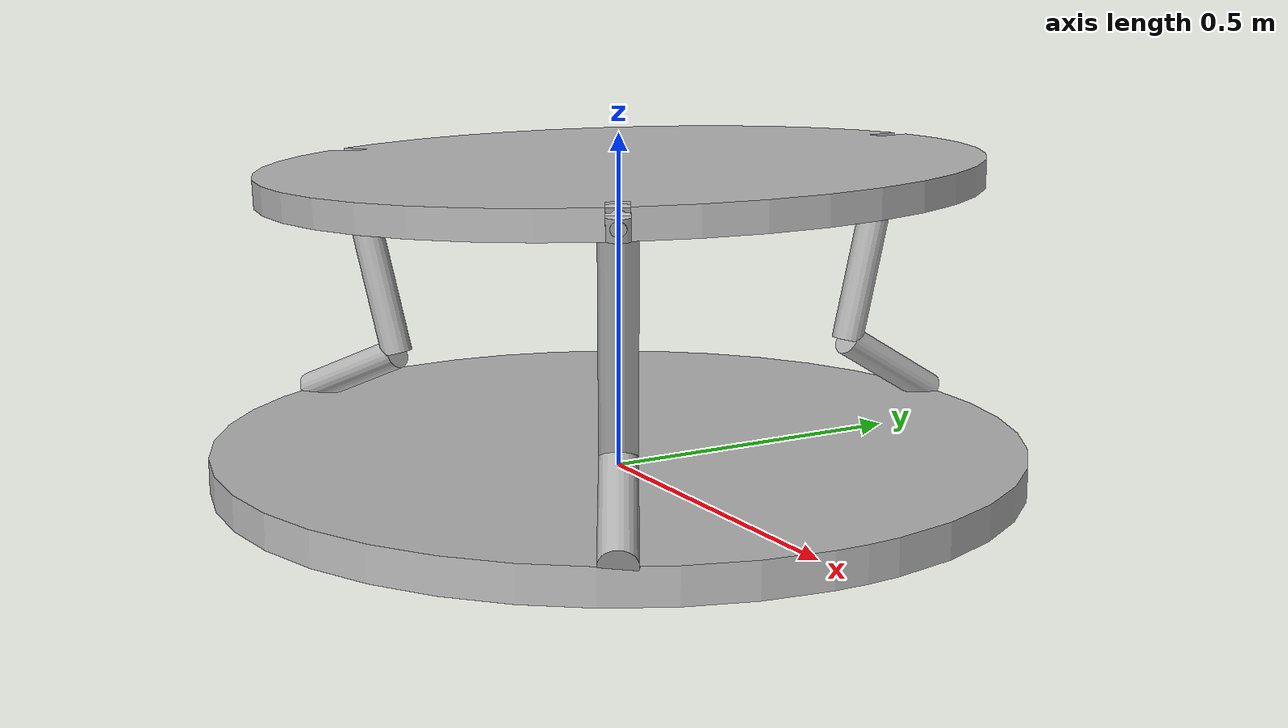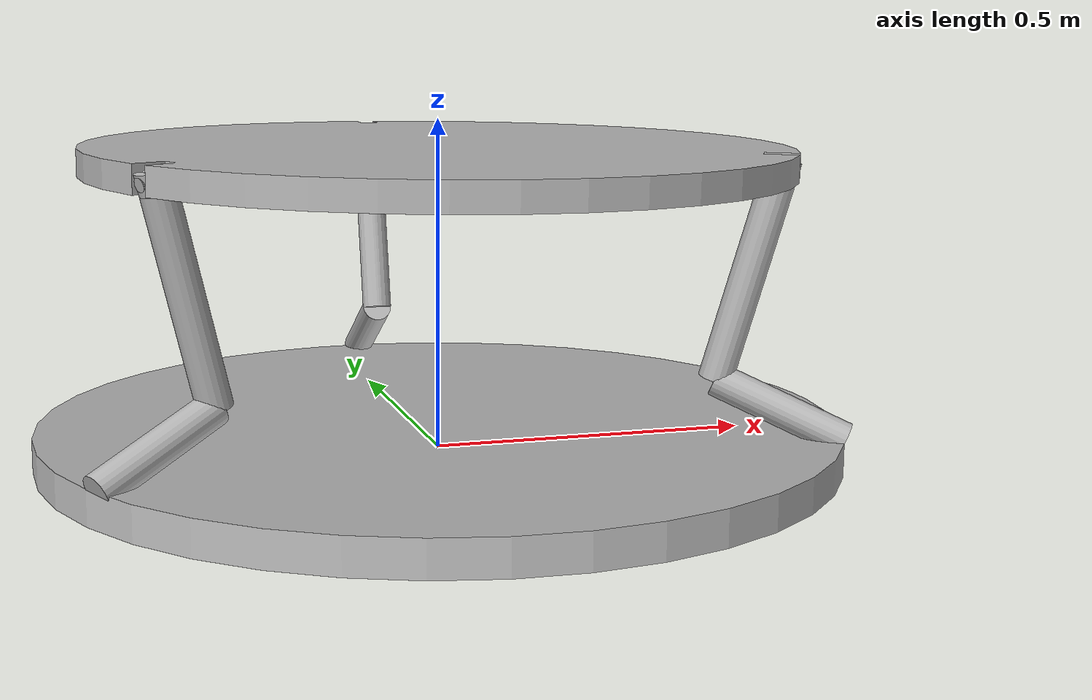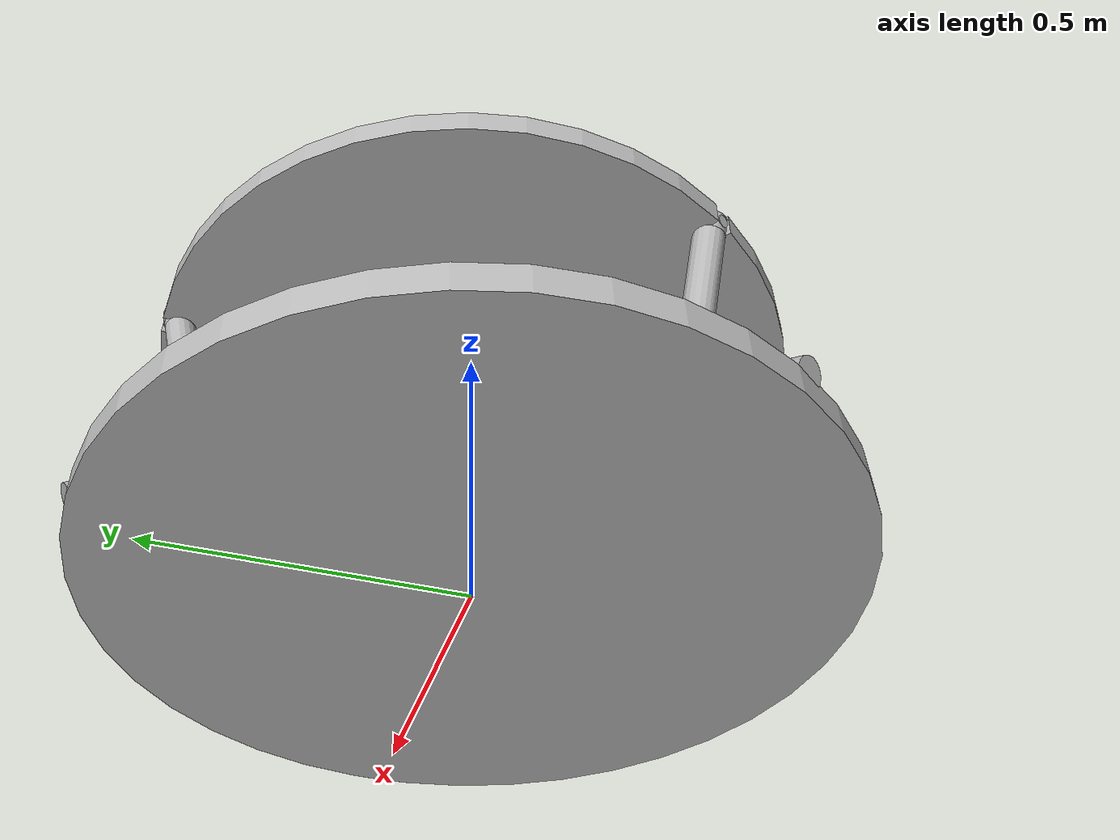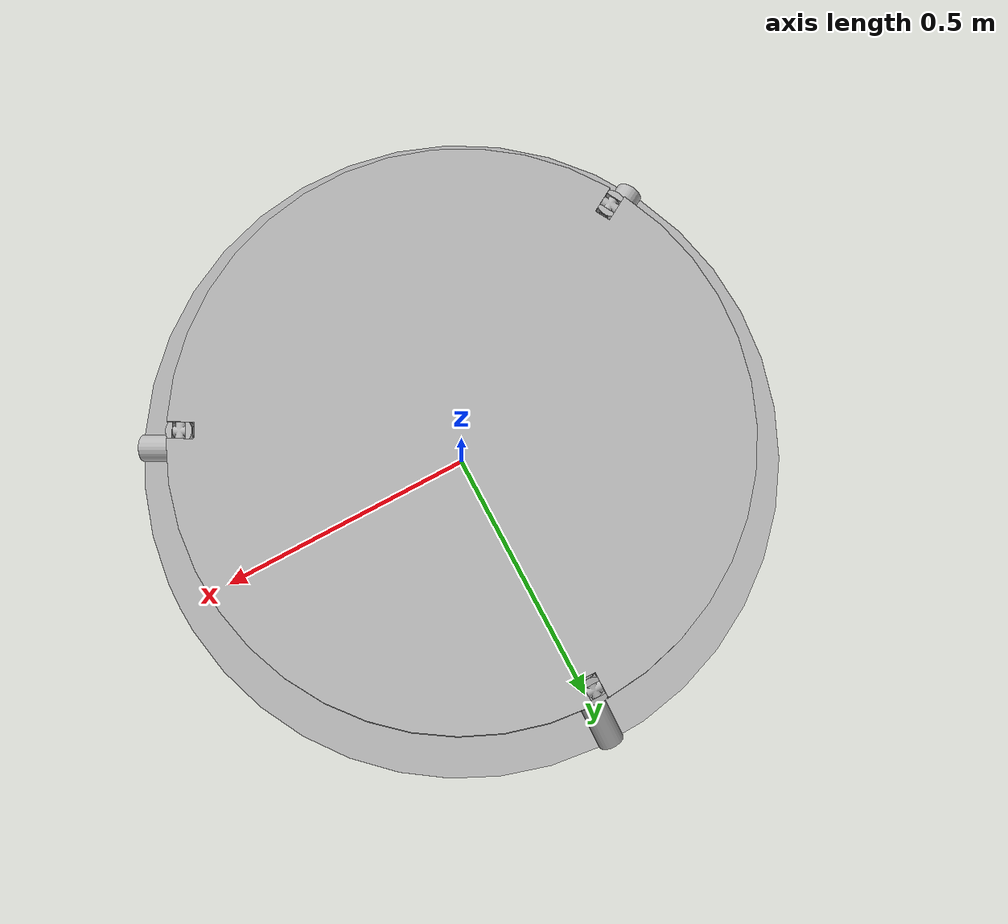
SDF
<?xml version='1.0'?>
<sdf version='1.7'>
  <model name='model3'>
    <link name='base_plat'>
      <pose>0 0 0 0 -0 0</pose>
      <inertial>
        <pose>0 -0 0.025 0 -0 0</pose>
        <mass>56.549</mass>
        <inertia>
          <ixx>5.1012</ixx>
          <ixy>2.1039e-29</ixy>
          <ixz>-2.7658e-29</ixz>
          <iyy>5.1012</iyy>
          <iyz>-6.2183e-16</iyz>
          <izz>10.179</izz>
        </inertia>
      </inertial>
      <self_collide>0</self_collide>
      <enable_wind>0</enable_wind>
      <kinematic>0</kinematic>
      <visual name='base_plat_visual'>
        <pose>0 0 0 0 -0 0</pose>
        <geometry>
          <mesh>
            <scale>1 1 1</scale>
            <uri>model://model3/meshes/base_plat.STL</uri>

          </mesh>
        </geometry>
        <material>
          <shader type='pixel'/>
        </material>
        <transparency>0</transparency>
        <cast_shadows>1</cast_shadows>
      </visual>
      <collision name='base_plat_collision'>
        <laser_retro>0</laser_retro>
        <max_contacts>10</max_contacts>
        <pose>0 0 0 0 -0 0</pose>
        <geometry>
          <mesh>
            <uri>model://model3/meshes/base_plat.STL</uri>
            <scale>1 1 1</scale>
          </mesh>
        </geometry>
        <surface>
          <friction>
            <ode>
              <mu>1</mu>
              <mu2>1</mu2>
              <fdir1>0 0 0</fdir1>
              <slip1>0</slip1>
              <slip2>0</slip2>
            </ode>
            <torsional>
              <coefficient>1</coefficient>
              <patch_radius>0</patch_radius>
              <surface_radius>0</surface_radius>
              <use_patch_radius>1</use_patch_radius>
              <ode>
                <slip>0</slip>
              </ode>
            </torsional>
          </friction>
          <bounce>
            <restitution_coefficient>0</restitution_coefficient>
            <threshold>1e+06</threshold>
          </bounce>
          <contact>
            <collide_without_contact>0</collide_without_contact>
            <collide_without_contact_bitmask>1</collide_without_contact_bitmask>
            <collide_bitmask>1</collide_bitmask>
            <ode>
              <soft_cfm>0</soft_cfm>
              <soft_erp>0.2</soft_erp>
              <kp>1e+13</kp>
              <kd>1</kd>
              <max_vel>0.01</max_vel>
              <min_depth>0</min_depth>
            </ode>
            <bullet>
              <split_impulse>1</split_impulse>
              <split_impulse_penetration_threshold>-0.01</split_impulse_penetration_threshold>
              <soft_cfm>0</soft_cfm>
              <soft_erp>0.2</soft_erp>
              <kp>1e+13</kp>
              <kd>1</kd>
            </bullet>
          </contact>
        </surface>
      </collision>
    </link>
    <link name='Rev1'>
      <pose>-0 0.495604 0.442474 0.2306 1e-06 3.14159</pose>
      <inertial>
        <pose>0 1e-06 0.010644 0 -0 0</pose>
        <mass>0.021479</mass>
        <inertia>
          <ixx>7.062e-06</ixx>
          <ixy>-1.1835e-11</ixy>
          <ixz>-4.9722e-11</ixz>
          <iyy>5.3239e-06</iyy>
          <iyz>-4.2684e-11</iyz>
          <izz>8.3294e-06</izz>
        </inertia>
      </inertial>
      <self_collide>0</self_collide>
      <enable_wind>0</enable_wind>
      <kinematic>0</kinematic>
      <visual name='Rev1_visual'>
        <pose>0 0 0 0 -0 0</pose>
        <geometry>
          <mesh>
            <scale>1 1 1</scale>
            <uri>model://model3/meshes/Rev1.STL</uri>
          </mesh>
        </geometry>
        <material>
          <shader type='pixel'/>
        </material>
        <transparency>0</transparency>
        <cast_shadows>1</cast_shadows>
      </visual>
      <collision name='Rev1_collision'>
        <laser_retro>0</laser_retro>
        <max_contacts>10</max_contacts>
        <pose>0 0 0 0 -0 0</pose>
        <geometry>
          <mesh>
            <uri>model://model3/meshes/Rev1.STL</uri>
            <scale>1 1 1</scale>
          </mesh>
        </geometry>
        <surface>
          <friction>
            <ode>
              <mu>1</mu>
              <mu2>1</mu2>
              <fdir1>0 0 0</fdir1>
              <slip1>0</slip1>
              <slip2>0</slip2>
            </ode>
            <torsional>
              <coefficient>1</coefficient>
              <patch_radius>0</patch_radius>
              <surface_radius>0</surface_radius>
              <use_patch_radius>1</use_patch_radius>
              <ode>
                <slip>0</slip>
              </ode>
            </torsional>
          </friction>
          <bounce>
            <restitution_coefficient>0</restitution_coefficient>
            <threshold>1e+06</threshold>
          </bounce>
          <contact>
            <collide_without_contact>0</collide_without_contact>
            <collide_without_contact_bitmask>1</collide_without_contact_bitmask>
            <collide_bitmask>1</collide_bitmask>
            <ode>
              <soft_cfm>0</soft_cfm>
              <soft_erp>0.2</soft_erp>
              <kp>1e+13</kp>
              <kd>1</kd>
              <max_vel>0.01</max_vel>
              <min_depth>0</min_depth>
            </ode>
            <bullet>
              <split_impulse>1</split_impulse>
              <split_impulse_penetration_threshold>-0.01</split_impulse_penetration_threshold>
              <soft_cfm>0</soft_cfm>
              <soft_erp>0.2</soft_erp>
              <kp>1e+13</kp>
              <kd>1</kd>
            </bullet>
          </contact>
        </surface>
      </collision>
    </link>
    <link name='Rev2'>
      <pose>-0.429022 -0.247693 0.418076 -0.267293 -0.001919 2.08739</pose>
      <inertial>
        <pose>-0 -1e-06 0.010644 0 -0 0</pose>
        <mass>0.021479</mass>
        <inertia>
          <ixx>7.062e-06</ixx>
          <ixy>-1.1845e-11</ixy>
          <ixz>4.9658e-11</ixz>
          <iyy>5.3239e-06</iyy>
          <iyz>4.2623e-11</iyz>
          <izz>8.3294e-06</izz>
        </inertia>
      </inertial>
      <self_collide>0</self_collide>
      <enable_wind>0</enable_wind>
      <kinematic>0</kinematic>
      <visual name='Rev2_visual'>
        <pose>0 0 0 0 -0 0</pose>
        <geometry>
          <mesh>
            <scale>1 1 1</scale>
            <uri>model://model3/meshes/Rev2.STL</uri>
          </mesh>
        </geometry>
        <material>
          <shader type='pixel'/>
        </material>
        <transparency>0</transparency>
        <cast_shadows>1</cast_shadows>
      </visual>
      <collision name='Rev2_collision'>
        <laser_retro>0</laser_retro>
        <max_contacts>10</max_contacts>
        <pose>0 0 0 0 -0 0</pose>
        <geometry>
          <mesh>
            <uri>model://model3/meshes/Rev2.STL</uri>
            <scale>1 1 1</scale>
          </mesh>
        </geometry>
        <surface>
          <friction>
            <ode>
              <mu>1</mu>
              <mu2>1</mu2>
              <fdir1>0 0 0</fdir1>
              <slip1>0</slip1>
              <slip2>0</slip2>
            </ode>
            <torsional>
              <coefficient>1</coefficient>
              <patch_radius>0</patch_radius>
              <surface_radius>0</surface_radius>
              <use_patch_radius>1</use_patch_radius>
              <ode>
                <slip>0</slip>
              </ode>
            </torsional>
          </friction>
          <bounce>
            <restitution_coefficient>0</restitution_coefficient>
            <threshold>1e+06</threshold>
          </bounce>
          <contact>
            <collide_without_contact>0</collide_without_contact>
            <collide_without_contact_bitmask>1</collide_without_contact_bitmask>
            <collide_bitmask>1</collide_bitmask>
            <ode>
              <soft_cfm>0</soft_cfm>
              <soft_erp>0.2</soft_erp>
              <kp>1e+13</kp>
              <kd>1</kd>
              <max_vel>0.01</max_vel>
              <min_depth>0</min_depth>
            </ode>
            <bullet>
              <split_impulse>1</split_impulse>
              <split_impulse_penetration_threshold>-0.01</split_impulse_penetration_threshold>
              <soft_cfm>0</soft_cfm>
              <soft_erp>0.2</soft_erp>
              <kp>1e+13</kp>
              <kd>1</kd>
            </bullet>
          </contact>
        </surface>
      </collision>
    </link>
    <link name='Rev3'>
      <pose>0.429022 -0.247693 0.418076 -0.267293 0.001919 -2.08739</pose>
      <inertial>
        <pose>-0 -0 0.010644 0 -0 0</pose>
        <mass>0.02148</mass>
        <inertia>
          <ixx>7.0623e-06</ixx>
          <ixy>-2.3475e-11</ixy>
          <ixz>5.9821e-13</ixz>
          <iyy>5.3239e-06</iyy>
          <iyz>-7.7648e-13</iyz>
          <izz>8.3298e-06</izz>
        </inertia>
      </inertial>
      <self_collide>0</self_collide>
      <enable_wind>0</enable_wind>
      <kinematic>0</kinematic>
      <visual name='Rev3_visual'>
        <pose>0 0 0 0 -0 0</pose>
        <geometry>
          <mesh>
            <scale>1 1 1</scale>
            <uri>model://model3/meshes/Rev3.STL</uri>
          </mesh>
        </geometry>
        <material>
          <shader type='pixel'/>
        </material>
        <transparency>0</transparency>
        <cast_shadows>1</cast_shadows>
      </visual>
      <collision name='Rev3_collision'>
        <laser_retro>0</laser_retro>
        <max_contacts>10</max_contacts>
        <pose>0 0 0 0 -0 0</pose>
        <geometry>
          <mesh>
            <uri>model://model3/meshes/Rev3.STL</uri>
            <scale>1 1 1</scale>
          </mesh>
        </geometry>
        <surface>
          <friction>
            <ode>
              <mu>1</mu>
              <mu2>1</mu2>
              <fdir1>0 0 0</fdir1>
              <slip1>0</slip1>
              <slip2>0</slip2>
            </ode>
            <torsional>
              <coefficient>1</coefficient>
              <patch_radius>0</patch_radius>
              <surface_radius>0</surface_radius>
              <use_patch_radius>1</use_patch_radius>
              <ode>
                <slip>0</slip>
              </ode>
            </torsional>
          </friction>
          <bounce>
            <restitution_coefficient>0</restitution_coefficient>
            <threshold>1e+06</threshold>
          </bounce>
          <contact>
            <collide_without_contact>0</collide_without_contact>
            <collide_without_contact_bitmask>1</collide_without_contact_bitmask>
            <collide_bitmask>1</collide_bitmask>
            <ode>
              <soft_cfm>0</soft_cfm>
              <soft_erp>0.2</soft_erp>
              <kp>1e+13</kp>
              <kd>1</kd>
              <max_vel>0.01</max_vel>
              <min_depth>0</min_depth>
            </ode>
            <bullet>
              <split_impulse>1</split_impulse>
              <split_impulse_penetration_threshold>-0.01</split_impulse_penetration_threshold>
              <soft_cfm>0</soft_cfm>
              <soft_erp>0.2</soft_erp>
              <kp>1e+13</kp>
              <kd>1</kd>
            </bullet>
          </contact>
        </surface>
      </collision>
    </link>
    <link name='Top1'>
      <pose>-0 0.499604 0.459511 0.03273 -1e-06 -5e-06</pose>
      <inertial>
        <pose>0 -0.5 0 0 -0 0</pose>
        <mass>34.426</mass>
        <inertia>
          <ixx>2.365</ixx>
          <ixy>-2.3803e-16</ixy>
          <ixz>-5.6997e-17</ixz>
          <iyy>2.365</iyy>
          <iyz>-4.1633e-17</iyz>
          <izz>4.7208</izz>
        </inertia>
      </inertial>
      <self_collide>0</self_collide>
      <enable_wind>0</enable_wind>
      <kinematic>0</kinematic>
      <visual name='Top1_visual'>
        <pose>0 0 0 0 -0 0</pose>
        <geometry>
          <mesh>
            <scale>1 1 1</scale>
            <uri>model://model3/meshes/Top1.STL</uri>
          </mesh>
        </geometry>
        <material>
          <shader type='pixel'/>
        </material>
        <transparency>0</transparency>
        <cast_shadows>1</cast_shadows>
      </visual>
      <collision name='Top1_collision'>
        <laser_retro>0</laser_retro>
        <max_contacts>10</max_contacts>
        <pose>0 0 0 0 -0 0</pose>
        <geometry>
          <mesh>
            <uri>model://model3/meshes/Top1.STL</uri>
            <scale>1 1 1</scale>
          </mesh>
        </geometry>
        <surface>
          <friction>
            <ode>
              <mu>1</mu>
              <mu2>1</mu2>
              <fdir1>0 0 0</fdir1>
              <slip1>0</slip1>
              <slip2>0</slip2>
            </ode>
            <torsional>
              <coefficient>1</coefficient>
              <patch_radius>0</patch_radius>
              <surface_radius>0</surface_radius>
              <use_patch_radius>1</use_patch_radius>
              <ode>
                <slip>0</slip>
              </ode>
            </torsional>
          </friction>
          <bounce>
            <restitution_coefficient>0</restitution_coefficient>
            <threshold>1e+06</threshold>
          </bounce>
          <contact>
            <collide_without_contact>0</collide_without_contact>
            <collide_without_contact_bitmask>1</collide_without_contact_bitmask>
            <collide_bitmask>1</collide_bitmask>
            <ode>
              <soft_cfm>0</soft_cfm>
              <soft_erp>0.2</soft_erp>
              <kp>1e+13</kp>
              <kd>1</kd>
              <max_vel>0.01</max_vel>
              <min_depth>0</min_depth>
            </ode>
            <bullet>
              <split_impulse>1</split_impulse>
              <split_impulse_penetration_threshold>-0.01</split_impulse_penetration_threshold>
              <soft_cfm>0</soft_cfm>
              <soft_erp>0.2</soft_erp>
              <kp>1e+13</kp>
              <kd>1</kd>
            </bullet>
          </contact>
        </surface>
      </collision>
    </link>
    <link name='arm1'>
      <pose>-0 0.6 0.05 1.0448 -0 0</pose>
      <inertial>
        <pose>0 -0 0.1 0 -0 0</pose>
        <mass>0.3927</mass>
        <inertia>
          <ixx>0.0013704</ixx>
          <ixy>-1.4144e-33</ixy>
          <ixz>-2.9803e-17</ixz>
          <iyy>0.0013704</iyy>
          <iyz>-1.1181e-19</iyz>
          <izz>0.00012272</izz>
        </inertia>
      </inertial>
      <self_collide>0</self_collide>
      <enable_wind>0</enable_wind>
      <kinematic>0</kinematic>
      <visual name='arm1_visual'>
        <pose>0 0 0 0 -0 0</pose>
        <geometry>
          <mesh>
            <scale>1 1 1</scale>
            <uri>model://model3/meshes/arm1.STL</uri>
          </mesh>
        </geometry>
        <material>
          <shader type='pixel'/>
        </material>
        <transparency>0</transparency>
        <cast_shadows>1</cast_shadows>
      </visual>
      <collision name='arm1_collision'>
        <laser_retro>0</laser_retro>
        <max_contacts>10</max_contacts>
        <pose>0 0 0 0 -0 0</pose>
        <geometry>
          <mesh>
            <uri>model://model3/meshes/arm1.STL</uri>
            <scale>1 1 1</scale>
          </mesh>
        </geometry>
        <surface>
          <friction>
            <ode>
              <mu>1</mu>
              <mu2>1</mu2>
              <fdir1>0 0 0</fdir1>
              <slip1>0</slip1>
              <slip2>0</slip2>
            </ode>
            <torsional>
              <coefficient>1</coefficient>
              <patch_radius>0</patch_radius>
              <surface_radius>0</surface_radius>
              <use_patch_radius>1</use_patch_radius>
              <ode>
                <slip>0</slip>
              </ode>
            </torsional>
          </friction>
          <bounce>
            <restitution_coefficient>0</restitution_coefficient>
            <threshold>1e+06</threshold>
          </bounce>
          <contact>
            <collide_without_contact>0</collide_without_contact>
            <collide_without_contact_bitmask>1</collide_without_contact_bitmask>
            <collide_bitmask>1</collide_bitmask>
            <ode>
              <soft_cfm>0</soft_cfm>
              <soft_erp>0.2</soft_erp>
              <kp>1e+13</kp>
              <kd>1</kd>
              <max_vel>0.01</max_vel>
              <min_depth>0</min_depth>
            </ode>
            <bullet>
              <split_impulse>1</split_impulse>
              <split_impulse_penetration_threshold>-0.01</split_impulse_penetration_threshold>
              <soft_cfm>0</soft_cfm>
              <soft_erp>0.2</soft_erp>
              <kp>1e+13</kp>
              <kd>1</kd>
            </bullet>
          </contact>
        </surface>
      </collision>
    </link>
    <link name='arm2'>
      <pose>-0.51962 -0.3 0.05 1.1662 -0 2.0944</pose>
      <inertial>
        <pose>0 0 0.1 0 -0 0</pose>
        <mass>0.3927</mass>
        <inertia>
          <ixx>0.0013704</ixx>
          <ixy>1.4821e-19</ixy>
          <ixz>-3.2718e-17</ixz>
          <iyy>0.0013704</iyy>
          <iyz>-8.1315e-20</iyz>
          <izz>0.00012272</izz>
        </inertia>
      </inertial>
      <self_collide>0</self_collide>
      <enable_wind>0</enable_wind>
      <kinematic>0</kinematic>
      <visual name='arm2_visual'>
        <pose>0 0 0 0 -0 0</pose>
        <geometry>
          <mesh>
            <scale>1 1 1</scale>
            <uri>model://model3/meshes/arm2.STL</uri>
          </mesh>
        </geometry>
        <material>
          <shader type='pixel'/>
        </material>
        <transparency>0</transparency>
        <cast_shadows>1</cast_shadows>
      </visual>
      <collision name='arm2_collision'>
        <laser_retro>0</laser_retro>
        <max_contacts>10</max_contacts>
        <pose>0 0 0 0 -0 0</pose>
        <geometry>
          <mesh>
            <uri>model://model3/meshes/arm2.STL</uri>
            <scale>1 1 1</scale>
          </mesh>
        </geometry>
        <surface>
          <friction>
            <ode>
              <mu>1</mu>
              <mu2>1</mu2>
              <fdir1>0 0 0</fdir1>
              <slip1>0</slip1>
              <slip2>0</slip2>
            </ode>
            <torsional>
              <coefficient>1</coefficient>
              <patch_radius>0</patch_radius>
              <surface_radius>0</surface_radius>
              <use_patch_radius>1</use_patch_radius>
              <ode>
                <slip>0</slip>
              </ode>
            </torsional>
          </friction>
          <bounce>
            <restitution_coefficient>0</restitution_coefficient>
            <threshold>1e+06</threshold>
          </bounce>
          <contact>
            <collide_without_contact>0</collide_without_contact>
            <collide_without_contact_bitmask>1</collide_without_contact_bitmask>
            <collide_bitmask>1</collide_bitmask>
            <ode>
              <soft_cfm>0</soft_cfm>
              <soft_erp>0.2</soft_erp>
              <kp>1e+13</kp>
              <kd>1</kd>
              <max_vel>0.01</max_vel>
              <min_depth>0</min_depth>
            </ode>
            <bullet>
              <split_impulse>1</split_impulse>
              <split_impulse_penetration_threshold>-0.01</split_impulse_penetration_threshold>
              <soft_cfm>0</soft_cfm>
              <soft_erp>0.2</soft_erp>
              <kp>1e+13</kp>
              <kd>1</kd>
            </bullet>
          </contact>
        </surface>
      </collision>
    </link>
    <link name='arm3'>
      <pose>0.51962 -0.3 0.05 1.1662 0 -2.0944</pose>
      <inertial>
        <pose>0 -0 0.1 0 -0 0</pose>
        <mass>0.3927</mass>
        <inertia>
          <ixx>0.0013704</ixx>
          <ixy>1.9376e-20</ixy>
          <ixz>-3.3037e-17</ixz>
          <iyy>0.0013704</iyy>
          <iyz>-1.0164e-20</iyz>
          <izz>0.00012272</izz>
        </inertia>
      </inertial>
      <self_collide>0</self_collide>
      <enable_wind>0</enable_wind>
      <kinematic>0</kinematic>
      <visual name='arm3_visual'>
        <pose>0 0 0 0 -0 0</pose>
        <geometry>
          <mesh>
            <scale>1 1 1</scale>
            <uri>model://model3/meshes/arm3.STL</uri>
          </mesh>
        </geometry>
        <material>
          <shader type='pixel'/>
        </material>
        <transparency>0</transparency>
        <cast_shadows>1</cast_shadows>
      </visual>
      <collision name='arm3_collision'>
        <laser_retro>0</laser_retro>
        <max_contacts>10</max_contacts>
        <pose>0 0 0 0 -0 0</pose>
        <geometry>
          <mesh>
            <uri>model://model3/meshes/arm3.STL</uri>
            <scale>1 1 1</scale>
          </mesh>
        </geometry>
        <surface>
          <friction>
            <ode>
              <mu>1</mu>
              <mu2>1</mu2>
              <fdir1>0 0 0</fdir1>
              <slip1>0</slip1>
              <slip2>0</slip2>
            </ode>
            <torsional>
              <coefficient>1</coefficient>
              <patch_radius>0</patch_radius>
              <surface_radius>0</surface_radius>
              <use_patch_radius>1</use_patch_radius>
              <ode>
                <slip>0</slip>
              </ode>
            </torsional>
          </friction>
          <bounce>
            <restitution_coefficient>0</restitution_coefficient>
            <threshold>1e+06</threshold>
          </bounce>
          <contact>
            <collide_without_contact>0</collide_without_contact>
            <collide_without_contact_bitmask>1</collide_without_contact_bitmask>
            <collide_bitmask>1</collide_bitmask>
            <ode>
              <soft_cfm>0</soft_cfm>
              <soft_erp>0.2</soft_erp>
              <kp>1e+13</kp>
              <kd>1</kd>
              <max_vel>0.01</max_vel>
              <min_depth>0</min_depth>
            </ode>
            <bullet>
              <split_impulse>1</split_impulse>
              <split_impulse_penetration_threshold>-0.01</split_impulse_penetration_threshold>
              <soft_cfm>0</soft_cfm>
              <soft_erp>0.2</soft_erp>
              <kp>1e+13</kp>
              <kd>1</kd>
            </bullet>
          </contact>
        </surface>
      </collision>
    </link>
    <link name='forearm1'>
      <pose>0 0.427035 0.150415 -0.2306 -0 -0</pose>
      <inertial>
        <pose>-0 -0 0.15 0 -0 0</pose>
        <mass>0.58905</mass>
        <inertia>
          <ixx>0.0045099</ixx>
          <ixy>0</ixy>
          <ixz>1.0833e-34</ixz>
          <iyy>0.0045099</iyy>
          <iyz>4.9128e-19</iyz>
          <izz>0.00018408</izz>
        </inertia>
      </inertial>
      <self_collide>0</self_collide>
      <enable_wind>0</enable_wind>
      <kinematic>0</kinematic>
      <visual name='forearm1_visual'>
        <pose>0 0 0 0 -0 0</pose>
        <geometry>
          <mesh>
            <scale>1 1 1</scale>
            <uri>model://model3/meshes/forearm1.STL</uri>
          </mesh>
        </geometry>
        <material>
          <shader type='pixel'/>
        </material>
        <transparency>0</transparency>
        <cast_shadows>1</cast_shadows>
      </visual>
      <collision name='forearm1_collision'>
        <laser_retro>0</laser_retro>
        <max_contacts>10</max_contacts>
        <pose>0 0 0 0 -0 0</pose>
        <geometry>
          <mesh>
            <uri>model://model3/meshes/forearm1.STL</uri>
            <scale>1 1 1</scale>
          </mesh>
        </geometry>
        <surface>
          <friction>
            <ode>
              <mu>1</mu>
              <mu2>1</mu2>
              <fdir1>0 0 0</fdir1>
              <slip1>0</slip1>
              <slip2>0</slip2>
            </ode>
            <torsional>
              <coefficient>1</coefficient>
              <patch_radius>0</patch_radius>
              <surface_radius>0</surface_radius>
              <use_patch_radius>1</use_patch_radius>
              <ode>
                <slip>0</slip>
              </ode>
            </torsional>
          </friction>
          <bounce>
            <restitution_coefficient>0</restitution_coefficient>
            <threshold>1e+06</threshold>
          </bounce>
          <contact>
            <collide_without_contact>0</collide_without_contact>
            <collide_without_contact_bitmask>1</collide_without_contact_bitmask>
            <collide_bitmask>1</collide_bitmask>
            <ode>
              <soft_cfm>0</soft_cfm>
              <soft_erp>0.2</soft_erp>
              <kp>1e+13</kp>
              <kd>1</kd>
              <max_vel>0.01</max_vel>
              <min_depth>0</min_depth>
            </ode>
            <bullet>
              <split_impulse>1</split_impulse>
              <split_impulse_penetration_threshold>-0.01</split_impulse_penetration_threshold>
              <soft_cfm>0</soft_cfm>
              <soft_erp>0.2</soft_erp>
              <kp>1e+13</kp>
              <kd>1</kd>
            </bullet>
          </contact>
        </surface>
      </collision>
    </link>
    <link name='forearm2'>
      <pose>-0.3604 -0.208073 0.12873 -0.2673 -0 2.0944</pose>
      <inertial>
        <pose>-0 -0 0.15 0 -0 0</pose>
        <mass>0.58905</mass>
        <inertia>
          <ixx>0.0045099</ixx>
          <ixy>-3.855e-20</ixy>
          <ixz>3.085e-17</ixz>
          <iyy>0.0045099</iyy>
          <iyz>-7.5555e-19</iyz>
          <izz>0.00018408</izz>
        </inertia>
      </inertial>
      <self_collide>0</self_collide>
      <enable_wind>0</enable_wind>
      <kinematic>0</kinematic>
      <visual name='forearm2_visual'>
        <pose>0 0 0 0 -0 0</pose>
        <geometry>
          <mesh>
            <scale>1 1 1</scale>
            <uri>model://model3/meshes/forearm2.STL</uri>
          </mesh>
        </geometry>
        <material>
          <shader type='pixel'/>
        </material>
        <transparency>0</transparency>
        <cast_shadows>1</cast_shadows>
      </visual>
      <collision name='forearm2_collision'>
        <laser_retro>0</laser_retro>
        <max_contacts>10</max_contacts>
        <pose>0 0 0 0 -0 0</pose>
        <geometry>
          <mesh>
            <uri>model://model3/meshes/forearm2.STL</uri>
            <scale>1 1 1</scale>
          </mesh>
        </geometry>
        <surface>
          <friction>
            <ode>
              <mu>1</mu>
              <mu2>1</mu2>
              <fdir1>0 0 0</fdir1>
              <slip1>0</slip1>
              <slip2>0</slip2>
            </ode>
            <torsional>
              <coefficient>1</coefficient>
              <patch_radius>0</patch_radius>
              <surface_radius>0</surface_radius>
              <use_patch_radius>1</use_patch_radius>
              <ode>
                <slip>0</slip>
              </ode>
            </torsional>
          </friction>
          <bounce>
            <restitution_coefficient>0</restitution_coefficient>
            <threshold>1e+06</threshold>
          </bounce>
          <contact>
            <collide_without_contact>0</collide_without_contact>
            <collide_without_contact_bitmask>1</collide_without_contact_bitmask>
            <collide_bitmask>1</collide_bitmask>
            <ode>
              <soft_cfm>0</soft_cfm>
              <soft_erp>0.2</soft_erp>
              <kp>1e+13</kp>
              <kd>1</kd>
              <max_vel>0.01</max_vel>
              <min_depth>0</min_depth>
            </ode>
            <bullet>
              <split_impulse>1</split_impulse>
              <split_impulse_penetration_threshold>-0.01</split_impulse_penetration_threshold>
              <soft_cfm>0</soft_cfm>
              <soft_erp>0.2</soft_erp>
              <kp>1e+13</kp>
              <kd>1</kd>
            </bullet>
          </contact>
        </surface>
      </collision>
    </link>
    <link name='forearm3'>
      <pose>0.3604 -0.208073 0.12873 -0.2673 -0 -2.0944</pose>
      <inertial>
        <pose>-0 -0 0.15 0 -0 0</pose>
        <mass>0.58905</mass>
        <inertia>
          <ixx>0.0045099</ixx>
          <ixy>-3.3589e-20</ixy>
          <ixz>3.3518e-17</ixz>
          <iyy>0.0045099</iyy>
          <iyz>-6.4713e-19</iyz>
          <izz>0.00018408</izz>
        </inertia>
      </inertial>
      <self_collide>0</self_collide>
      <enable_wind>0</enable_wind>
      <kinematic>0</kinematic>
      <visual name='forearm3_visual'>
        <pose>0 0 0 0 -0 0</pose>
        <geometry>
          <mesh>
            <scale>1 1 1</scale>
            <uri>model://model3/meshes/forearm3.STL</uri>
          </mesh>
        </geometry>
        <material>
          <shader type='pixel'/>
        </material>
        <transparency>0</transparency>
        <cast_shadows>1</cast_shadows>
      </visual>
      <collision name='forearm3_collision'>
        <laser_retro>0</laser_retro>
        <max_contacts>10</max_contacts>
        <pose>0 0 0 0 -0 0</pose>
        <geometry>
          <mesh>
            <uri>model://model3/meshes/forearm3.STL</uri>
            <scale>1 1 1</scale>
          </mesh>
        </geometry>
        <surface>
          <friction>
            <ode>
              <mu>1</mu>
              <mu2>1</mu2>
              <fdir1>0 0 0</fdir1>
              <slip1>0</slip1>
              <slip2>0</slip2>
            </ode>
            <torsional>
              <coefficient>1</coefficient>
              <patch_radius>0</patch_radius>
              <surface_radius>0</surface_radius>
              <use_patch_radius>1</use_patch_radius>
              <ode>
                <slip>0</slip>
              </ode>
            </torsional>
          </friction>
          <bounce>
            <restitution_coefficient>0</restitution_coefficient>
            <threshold>1e+06</threshold>
          </bounce>
          <contact>
            <collide_without_contact>0</collide_without_contact>
            <collide_without_contact_bitmask>1</collide_without_contact_bitmask>
            <collide_bitmask>1</collide_bitmask>
            <ode>
              <soft_cfm>0</soft_cfm>
              <soft_erp>0.2</soft_erp>
              <kp>1e+13</kp>
              <kd>1</kd>
              <max_vel>0.01</max_vel>
              <min_depth>0</min_depth>
            </ode>
            <bullet>
              <split_impulse>1</split_impulse>
              <split_impulse_penetration_threshold>-0.01</split_impulse_penetration_threshold>
              <soft_cfm>0</soft_cfm>
              <soft_erp>0.2</soft_erp>
              <kp>1e+13</kp>
              <kd>1</kd>
            </bullet>
          </contact>
        </surface>
      </collision>
    </link>
    <link name='yoke1'>
      <pose>-0 0.499604 0.459511 -0.2306 -1e-06 -5e-06</pose>
      <inertial>
        <pose>-0 0 -0 0 -0 0</pose>
        <mass>0.026083</mass>
        <inertia>
          <ixx>4.2017e-06</ixx>
          <ixy>-4.1062e-18</ixy>
          <ixz>1.3976e-11</ixz>
          <iyy>4.2017e-06</iyy>
          <iyz>1.3976e-11</iyz>
          <izz>7.0459e-06</izz>
        </inertia>
      </inertial>
      <self_collide>0</self_collide>
      <enable_wind>0</enable_wind>
      <kinematic>0</kinematic>
      <visual name='yoke1_visual'>
        <pose>0 0 0 0 -0 0</pose>
        <geometry>
          <mesh>
            <scale>1 1 1</scale>
            <uri>model://model3/meshes/yoke1.STL</uri>
          </mesh>
        </geometry>
        <material>
          <shader type='pixel'/>
        </material>
        <transparency>0</transparency>
        <cast_shadows>1</cast_shadows>
      </visual>
      <collision name='yoke1_collision'>
        <laser_retro>0</laser_retro>
        <max_contacts>10</max_contacts>
        <pose>0 0 0 0 -0 0</pose>
        <geometry>
          <mesh>
            <uri>model://model3/meshes/yoke1.STL</uri>
            <scale>1 1 1</scale>
          </mesh>
        </geometry>
        <surface>
          <friction>
            <ode>
              <mu>1</mu>
              <mu2>1</mu2>
              <fdir1>0 0 0</fdir1>
              <slip1>0</slip1>
              <slip2>0</slip2>
            </ode>
            <torsional>
              <coefficient>1</coefficient>
              <patch_radius>0</patch_radius>
              <surface_radius>0</surface_radius>
              <use_patch_radius>1</use_patch_radius>
              <ode>
                <slip>0</slip>
              </ode>
            </torsional>
          </friction>
          <bounce>
            <restitution_coefficient>0</restitution_coefficient>
            <threshold>1e+06</threshold>
          </bounce>
          <contact>
            <collide_without_contact>0</collide_without_contact>
            <collide_without_contact_bitmask>1</collide_without_contact_bitmask>
            <collide_bitmask>1</collide_bitmask>
            <ode>
              <soft_cfm>0</soft_cfm>
              <soft_erp>0.2</soft_erp>
              <kp>1e+13</kp>
              <kd>1</kd>
              <max_vel>0.01</max_vel>
              <min_depth>0</min_depth>
            </ode>
            <bullet>
              <split_impulse>1</split_impulse>
              <split_impulse_penetration_threshold>-0.01</split_impulse_penetration_threshold>
              <soft_cfm>0</soft_cfm>
              <soft_erp>0.2</soft_erp>
              <kp>1e+13</kp>
              <kd>1</kd>
            </bullet>
          </contact>
        </surface>
      </collision>
    </link>
    <link name='yoke2'>
      <pose>-0.433025 -0.250004 0.434954 -0.267403 -0.028348 2.09463</pose>
      <inertial>
        <pose>-0 0 -0 0 -0 0</pose>
        <mass>0.026083</mass>
        <inertia>
          <ixx>4.2017e-06</ixx>
          <ixy>-4.1042e-18</ixy>
          <ixz>1.3976e-11</ixz>
          <iyy>4.2017e-06</iyy>
          <iyz>1.3976e-11</iyz>
          <izz>7.0459e-06</izz>
        </inertia>
      </inertial>
      <self_collide>0</self_collide>
      <enable_wind>0</enable_wind>
      <kinematic>0</kinematic>
      <visual name='yoke2_visual'>
        <pose>0 0 0 0 -0 0</pose>
        <geometry>
          <mesh>
            <scale>1 1 1</scale>
            <uri>model://model3/meshes/yoke2.STL</uri>
          </mesh>
        </geometry>
        <material>
          <shader type='pixel'/>
        </material>
        <transparency>0</transparency>
        <cast_shadows>1</cast_shadows>
      </visual>
      <collision name='yoke2_collision'>
        <laser_retro>0</laser_retro>
        <max_contacts>10</max_contacts>
        <pose>0 0 0 0 -0 0</pose>
        <geometry>
          <mesh>
            <uri>model://model3/meshes/yoke2.STL</uri>
            <scale>1 1 1</scale>
          </mesh>
        </geometry>
        <surface>
          <friction>
            <ode>
              <mu>1</mu>
              <mu2>1</mu2>
              <fdir1>0 0 0</fdir1>
              <slip1>0</slip1>
              <slip2>0</slip2>
            </ode>
            <torsional>
              <coefficient>1</coefficient>
              <patch_radius>0</patch_radius>
              <surface_radius>0</surface_radius>
              <use_patch_radius>1</use_patch_radius>
              <ode>
                <slip>0</slip>
              </ode>
            </torsional>
          </friction>
          <bounce>
            <restitution_coefficient>0</restitution_coefficient>
            <threshold>1e+06</threshold>
          </bounce>
          <contact>
            <collide_without_contact>0</collide_without_contact>
            <collide_without_contact_bitmask>1</collide_without_contact_bitmask>
            <collide_bitmask>1</collide_bitmask>
            <ode>
              <soft_cfm>0</soft_cfm>
              <soft_erp>0.2</soft_erp>
              <kp>1e+13</kp>
              <kd>1</kd>
              <max_vel>0.01</max_vel>
              <min_depth>0</min_depth>
            </ode>
            <bullet>
              <split_impulse>1</split_impulse>
              <split_impulse_penetration_threshold>-0.01</split_impulse_penetration_threshold>
              <soft_cfm>0</soft_cfm>
              <soft_erp>0.2</soft_erp>
              <kp>1e+13</kp>
              <kd>1</kd>
            </bullet>
          </contact>
        </surface>
      </collision>
    </link>
    <link name='yoke3'>
      <pose>0.433025 -0.250004 0.434954 -0.267403 0.028348 -2.09463</pose>
      <inertial>
        <pose>0 0 -0 0 -0 0</pose>
        <mass>0.026083</mass>
        <inertia>
          <ixx>4.2017e-06</ixx>
          <ixy>4.1065e-18</ixy>
          <ixz>1.3976e-11</ixz>
          <iyy>4.2017e-06</iyy>
          <iyz>-1.3976e-11</iyz>
          <izz>7.0459e-06</izz>
        </inertia>
      </inertial>
      <self_collide>0</self_collide>
      <enable_wind>0</enable_wind>
      <kinematic>0</kinematic>
      <visual name='yoke3_visual'>
        <pose>0 0 0 0 -0 0</pose>
        <geometry>
          <mesh>
            <scale>1 1 1</scale>
            <uri>model://model3/meshes/yoke3.STL</uri>
          </mesh>
        </geometry>
        <material>
          <shader type='pixel'/>
        </material>
        <transparency>0</transparency>
        <cast_shadows>1</cast_shadows>
      </visual>
      <collision name='yoke3_collision'>
        <laser_retro>0</laser_retro>
        <max_contacts>10</max_contacts>
        <pose>0 0 0 0 -0 0</pose>
        <geometry>
          <mesh>
            <uri>model://model3/meshes/yoke3.STL</uri>
            <scale>1 1 1</scale>
          </mesh>
        </geometry>
        <surface>
          <friction>
            <ode>
              <mu>1</mu>
              <mu2>1</mu2>
              <fdir1>0 0 0</fdir1>
              <slip1>0</slip1>
              <slip2>0</slip2>
            </ode>
            <torsional>
              <coefficient>1</coefficient>
              <patch_radius>0</patch_radius>
              <surface_radius>0</surface_radius>
              <use_patch_radius>1</use_patch_radius>
              <ode>
                <slip>0</slip>
              </ode>
            </torsional>
          </friction>
          <bounce>
            <restitution_coefficient>0</restitution_coefficient>
            <threshold>1e+06</threshold>
          </bounce>
          <contact>
            <collide_without_contact>0</collide_without_contact>
            <collide_without_contact_bitmask>1</collide_without_contact_bitmask>
            <collide_bitmask>1</collide_bitmask>
            <ode>
              <soft_cfm>0</soft_cfm>
              <soft_erp>0.2</soft_erp>
              <kp>1e+13</kp>
              <kd>1</kd>
              <max_vel>0.01</max_vel>
              <min_depth>0</min_depth>
            </ode>
            <bullet>
              <split_impulse>1</split_impulse>
              <split_impulse_penetration_threshold>-0.01</split_impulse_penetration_threshold>
              <soft_cfm>0</soft_cfm>
              <soft_erp>0.2</soft_erp>
              <kp>1e+13</kp>
              <kd>1</kd>
            </bullet>
          </contact>
        </surface>
      </collision>
    </link>
    <joint name='R11' type='revolute'>

      <physics>
        <provide_feedback>true</provide_feedback>
      </physics>
      <parent>base_plat</parent>
      <child>arm1</child>
      <pose>0 0 0 0 -0 0</pose>
      <axis>
        <xyz>-1 0 0</xyz>
        <limit>
          <lower>-0.698132</lower>
          <upper>1.5708</upper>
          <effort>-1</effort>
          <velocity>-1</velocity>
        </limit>
        <dynamics>
          <spring_reference>0</spring_reference>
          <spring_stiffness>0</spring_stiffness>
          <damping>0</damping>
          <friction>0</friction>
        </dynamics>
      </axis>
      <physics>
        <ode>
          <limit>
            <cfm>0</cfm>
            <erp>0.2</erp>
          </limit>
          <suspension>
            <cfm>0</cfm>
            <erp>0.2</erp>
          </suspension>
        </ode>
      </physics>
      <sensor name="force_torque" type="force_torque">
        <update_rate>30</update_rate>
        <force_torque>
          <frame>sensor</frame>
          <measure_direction>child_to_parent</measure_direction>
        </force_torque>
      </sensor>
    </joint>
    <joint name='R12' type='revolute'>

      <physics>
        <provide_feedback>true</provide_feedback>
      </physics>
      <parent>arm1</parent>
      <child>forearm1</child>
      <pose>0 0 0 0 -0 0</pose>
      <axis>
        <xyz>-1 0 0</xyz>
        <limit>
          <lower>-1e+16</lower>
          <upper>1e+16</upper>
          <effort>-1</effort>
          <velocity>-1</velocity>
        </limit>
        <dynamics>
          <spring_reference>0</spring_reference>
          <spring_stiffness>0</spring_stiffness>
          <damping>0</damping>
          <friction>0</friction>
        </dynamics>
      </axis>
      <physics>
        <ode>
          <limit>
            <cfm>0</cfm>
            <erp>0.2</erp>
          </limit>
          <suspension>
            <cfm>0</cfm>
            <erp>0.2</erp>
          </suspension>
        </ode>
      </physics>
    </joint>
    <joint name='R13' type='revolute'>

      <physics>
        <provide_feedback>true</provide_feedback>
      </physics>
      <parent>forearm1</parent>
      <child>Rev1</child>
      <pose>-0 0 0 0 -0 0</pose>
      <axis>
        <xyz>0 0 1</xyz>
        <limit>
          <lower>-1e+16</lower>
          <upper>1e+16</upper>
          <effort>-1</effort>
          <velocity>-1</velocity>
        </limit>
        <dynamics>
          <spring_reference>0</spring_reference>
          <spring_stiffness>0</spring_stiffness>
          <damping>0</damping>
          <friction>0</friction>
        </dynamics>
      </axis>
      <physics>
        <ode>
          <limit>
            <cfm>0</cfm>
            <erp>0.2</erp>
          </limit>
          <suspension>
            <cfm>0</cfm>
            <erp>0.2</erp>
          </suspension>
        </ode>
      </physics>
    </joint>
    <joint name='R14' type='revolute'>

      <physics>
        <provide_feedback>true</provide_feedback>
      </physics>
      <parent>Rev1</parent>
      <child>yoke1</child>
      <pose>0 0 0 -0 -0 -0</pose>
      <axis>
        <xyz>0 -1 0</xyz>
        <limit>
          <lower>-1e+16</lower>
          <upper>1e+16</upper>
          <effort>-1</effort>
          <velocity>-1</velocity>
        </limit>
        <dynamics>
          <spring_reference>0</spring_reference>
          <spring_stiffness>0</spring_stiffness>
          <damping>0</damping>
          <friction>0</friction>
        </dynamics>
      </axis>
      <physics>
        <ode>
          <limit>
            <cfm>0</cfm>
            <erp>0.2</erp>
          </limit>
          <suspension>
            <cfm>0</cfm>
            <erp>0.2</erp>
          </suspension>
        </ode>
      </physics>
    </joint>
    <joint name='R15' type='revolute'>

      <physics>
        <provide_feedback>true</provide_feedback>
      </physics>
      <parent>yoke1</parent>
      <child>Top1</child>
      <pose>-0 0 0 0 -0 0</pose>
      <axis>
        <xyz>1 0 0</xyz>
        <limit>
          <lower>-1e+16</lower>
          <upper>1e+16</upper>
          <effort>-1</effort>
          <velocity>-1</velocity>
        </limit>
        <dynamics>
          <spring_reference>0</spring_reference>
          <spring_stiffness>0</spring_stiffness>
          <damping>0</damping>
          <friction>0</friction>
        </dynamics>
      </axis>
      <physics>
        <ode>
          <limit>
            <cfm>0</cfm>
            <erp>0.2</erp>
          </limit>
          <suspension>
            <cfm>0</cfm>
            <erp>0.2</erp>
          </suspension>
        </ode>
      </physics>
    </joint>
    <joint name='R21' type='revolute'>

      <physics>
        <provide_feedback>true</provide_feedback>
      </physics>
      <parent>base_plat</parent>
      <child>arm2</child>
      <pose>0 0 0 0 -0 0</pose>
      <axis>
        <xyz>-1 0 0</xyz>
        <limit>
          <lower>-0.698132</lower>
          <upper>1.5708</upper>
          <effort>-1</effort>
          <velocity>-1</velocity>
        </limit>
        <dynamics>
          <spring_reference>0</spring_reference>
          <spring_stiffness>0</spring_stiffness>
          <damping>0</damping>
          <friction>0</friction>
        </dynamics>
      </axis>
      <physics>
        <ode>
          <limit>
            <cfm>0</cfm>
            <erp>0.2</erp>
          </limit>
          <suspension>
            <cfm>0</cfm>
            <erp>0.2</erp>
          </suspension>
        </ode>
      </physics>
      <sensor name="force_torque" type="force_torque">
        <update_rate>30</update_rate>
        <force_torque>
          <frame>sensor</frame>
          <measure_direction>child_to_parent</measure_direction>
        </force_torque>
      </sensor>
    </joint>
    <joint name='R22' type='revolute'>

      <physics>
        <provide_feedback>true</provide_feedback>
      </physics>
      <parent>arm2</parent>
      <child>forearm2</child>
      <pose>-0 0 0 0 -0 0</pose>
      <axis>
        <xyz>-1 0 0</xyz>
        <limit>
          <lower>-1e+16</lower>
          <upper>1e+16</upper>
          <effort>-1</effort>
          <velocity>-1</velocity>
        </limit>
        <dynamics>
          <spring_reference>0</spring_reference>
          <spring_stiffness>0</spring_stiffness>
          <damping>0</damping>
          <friction>0</friction>
        </dynamics>
      </axis>
      <physics>
        <ode>
          <limit>
            <cfm>0</cfm>
            <erp>0.2</erp>
          </limit>
          <suspension>
            <cfm>0</cfm>
            <erp>0.2</erp>
          </suspension>
        </ode>
      </physics>
    </joint>
    <joint name='R23' type='revolute'>

      <physics>
        <provide_feedback>true</provide_feedback>
      </physics>
      <parent>forearm2</parent>
      <child>Rev2</child>
      <pose>0 0 0 0 -0 0</pose>
      <axis>
        <xyz>0 0 1</xyz>
        <limit>
          <lower>-1e+16</lower>
          <upper>1e+16</upper>
          <effort>-1</effort>
          <velocity>-1</velocity>
        </limit>
        <dynamics>
          <spring_reference>0</spring_reference>
          <spring_stiffness>0</spring_stiffness>
          <damping>0</damping>
          <friction>0</friction>
        </dynamics>
      </axis>
      <physics>
        <ode>
          <limit>
            <cfm>0</cfm>
            <erp>0.2</erp>
          </limit>
          <suspension>
            <cfm>0</cfm>
            <erp>0.2</erp>
          </suspension>
        </ode>
      </physics>
    </joint>
    <joint name='R24' type='revolute'>

      <physics>
        <provide_feedback>true</provide_feedback>
      </physics>
      <parent>Rev2</parent>
      <child>yoke2</child>
      <pose>0 0 0 0 -0 0</pose>
      <axis>
        <xyz>0 -1 0</xyz>
        <limit>
          <lower>-1e+16</lower>
          <upper>1e+16</upper>
          <effort>-1</effort>
          <velocity>-1</velocity>
        </limit>
        <dynamics>
          <spring_reference>0</spring_reference>
          <spring_stiffness>0</spring_stiffness>
          <damping>0</damping>
          <friction>0</friction>
        </dynamics>
      </axis>
      <physics>
        <ode>
          <limit>
            <cfm>0</cfm>
            <erp>0.2</erp>
          </limit>
          <suspension>
            <cfm>0</cfm>
            <erp>0.2</erp>
          </suspension>
        </ode>
      </physics>
    </joint>
    <joint name='R25' type='revolute'>
      <physics>
        <provide_feedback>true</provide_feedback>
      </physics>
      <parent>yoke2</parent>
      <child>Top1</child>
      <pose>-0.433021 -0.750012 -1.2e-05 -4e-06 3.2e-05 -2.61798</pose>
      <axis>
        <xyz>0 -1 0</xyz>
        <limit>
          <lower>-1e+16</lower>
          <upper>1e+16</upper>
          <effort>-1</effort>
          <velocity>-1</velocity>
        </limit>
        <dynamics>
          <spring_reference>0</spring_reference>
          <spring_stiffness>0</spring_stiffness>
          <damping>0</damping>
          <friction>0</friction>
        </dynamics>
      </axis>
      <physics>
        <ode>
          <limit>
            <cfm>0</cfm>
            <erp>0.2</erp>
          </limit>
          <suspension>
            <cfm>0</cfm>
            <erp>0.2</erp>
          </suspension>
        </ode>
      </physics>
    </joint>
    <joint name='R31' type='revolute'>
      <physics>
        <provide_feedback>true</provide_feedback>
      </physics>
      <parent>base_plat</parent>
      <child>arm3</child>
      <pose>0 0 0 0 -0 0</pose>
      <axis>
        <xyz>-1 0 0</xyz>
        <limit>
          <lower>-0.698132</lower>
          <upper>1.5708</upper>
          <effort>-1</effort>
          <velocity>-1</velocity>
        </limit>
        <dynamics>
          <spring_reference>0</spring_reference>
          <spring_stiffness>0</spring_stiffness>
          <damping>0</damping>
          <friction>0</friction>
        </dynamics>
      </axis>
      <physics>
        <ode>
          <limit>
            <cfm>0</cfm>
            <erp>0.2</erp>
          </limit>
          <suspension>
            <cfm>0</cfm>
            <erp>0.2</erp>
          </suspension>
        </ode>
      </physics>

      <sensor name="force_torque" type="force_torque">
        <update_rate>30</update_rate>
        <force_torque>
          <frame>sensor</frame>
          <measure_direction>child_to_parent</measure_direction>
        </force_torque>
      </sensor>
    </joint>
    <joint name='R32' type='revolute'>
      <physics>
        <provide_feedback>true</provide_feedback>
      </physics>
      <parent>arm3</parent>
      <child>forearm3</child>
      <pose>0 0 0 0 -0 0</pose>
      <axis>
        <xyz>-1 0 0</xyz>
        <limit>
          <lower>-1e+16</lower>
          <upper>1e+16</upper>
          <effort>-1</effort>
          <velocity>-1</velocity>
        </limit>
        <dynamics>
          <spring_reference>0</spring_reference>
          <spring_stiffness>0</spring_stiffness>
          <damping>0</damping>
          <friction>0</friction>
        </dynamics>
      </axis>
      <physics>
        <ode>
          <limit>
            <cfm>0</cfm>
            <erp>0.2</erp>
          </limit>
          <suspension>
            <cfm>0</cfm>
            <erp>0.2</erp>
          </suspension>
        </ode>
      </physics>
    </joint>
    <joint name='R33' type='revolute'>
      <physics>
        <provide_feedback>true</provide_feedback>
      </physics>
      <parent>forearm3</parent>
      <child>Rev3</child>
      <pose>-0 0 0 0 -0 0</pose>
      <axis>
        <xyz>0 0 1</xyz>
        <limit>
          <lower>-1e+16</lower>
          <upper>1e+16</upper>
          <effort>-1</effort>
          <velocity>-1</velocity>
        </limit>
        <dynamics>
          <spring_reference>0</spring_reference>
          <spring_stiffness>0</spring_stiffness>
          <damping>0</damping>
          <friction>0</friction>
        </dynamics>
      </axis>
      <physics>
        <ode>
          <limit>
            <cfm>0</cfm>
            <erp>0.2</erp>
          </limit>
          <suspension>
            <cfm>0</cfm>
            <erp>0.2</erp>
          </suspension>
        </ode>
      </physics>
    </joint>
    <joint name='R34' type='revolute'>
      <physics>
        <provide_feedback>true</provide_feedback>
      </physics>
      <parent>Rev3</parent>
      <child>yoke3</child>
      <pose>-0 0 0 0 -0 0</pose>
      <axis>
        <xyz>0 -1 0</xyz>
        <limit>
          <lower>-1e+16</lower>
          <upper>1e+16</upper>
          <effort>-1</effort>
          <velocity>-1</velocity>
        </limit>
        <dynamics>
          <spring_reference>0</spring_reference>
          <spring_stiffness>0</spring_stiffness>
          <damping>0</damping>
          <friction>0</friction>
        </dynamics>
      </axis>
      <physics>
        <ode>
          <limit>
            <cfm>0</cfm>
            <erp>0.2</erp>
          </limit>
          <suspension>
            <cfm>0</cfm>
            <erp>0.2</erp>
          </suspension>
        </ode>
      </physics>
    </joint>
    <joint name='R35' type='revolute'>

      <physics>
        <provide_feedback>true</provide_feedback>
      </physics>
      <parent>yoke3</parent>
      <child>Top1</child>
      <pose>0.433029 -0.750007 -1.3e-05 3.4e-05 -4e-06 1.0472</pose>
      <axis>
        <xyz>1 0 0</xyz>
        <limit>
          <lower>-1e+16</lower>
          <upper>1e+16</upper>
          <effort>-1</effort>
          <velocity>-1</velocity>
        </limit>
        <dynamics>
          <spring_reference>0</spring_reference>
          <spring_stiffness>0</spring_stiffness>
          <damping>0</damping>
          <friction>0</friction>
        </dynamics>
      </axis>
      <physics>
        <ode>
          <limit>
            <cfm>0</cfm>
            <erp>0.2</erp>
          </limit>
          <suspension>
            <cfm>0</cfm>
            <erp>0.2</erp>
          </suspension>
        </ode>
      </physics>
    </joint>
    <static>0</static>
    <allow_auto_disable>1</allow_auto_disable>

    <!--fixing base_link to world-->
    <link name="world_fix"></link>
    <joint name ="weld" type="fixed">
      <parent>world</parent>
      <child>base_plat</child>
    </joint>
    <!--fixing base_link to world-->

    <plugin name="gazebo_ros_force" filename="libgazebo_ros_force.so">
      <ros>
        <namespace>/demo/arm3</namespace>
        <remapping>gazebo_ros_force:=force_demo3</remapping>
      </ros>
      <link_name>arm3</link_name>
      <force_frame>link</force_frame>
    </plugin>

    <plugin name="gazebo_ros_force" filename="libgazebo_ros_force.so">
      <ros>
        <namespace>/demo/arm2</namespace>
        <remapping>gazebo_ros_force:=force_demo2</remapping>
      </ros>
      <link_name>arm2</link_name>
      <force_frame>link</force_frame>
    </plugin>

    <plugin name="gazebo_ros_force" filename="libgazebo_ros_force.so">
      <ros>
        <namespace>/demo/arm1</namespace>
        <remapping>gazebo_ros_force:=force_demo1</remapping>
      </ros>
      <link_name>arm1</link_name>
      <force_frame>link</force_frame>
    </plugin>

    <plugin name='joint_publisher' filename='libgazebo_ros_joint_state_publisher.so'>
      <ros>
        <namespace>/myrobot/R11</namespace>
      </ros>
      <update_rate>1000.0</update_rate>
      <joint_name>R11</joint_name>
    </plugin>

    <plugin name='joint_publisher' filename='libgazebo_ros_joint_state_publisher.so'>
      <ros>
        <namespace>/myrobot/R21</namespace>
      </ros>
      <update_rate>1000.0</update_rate>
      <joint_name>R21</joint_name>
    </plugin>
    <plugin name='joint_publisher' filename='libgazebo_ros_joint_state_publisher.so'>
      <ros>
        <namespace>/myrobot/R31</namespace>
      </ros>
      <update_rate>1000.0</update_rate>
      <joint_name>R31</joint_name>
    </plugin>

  </model>
</sdf>
